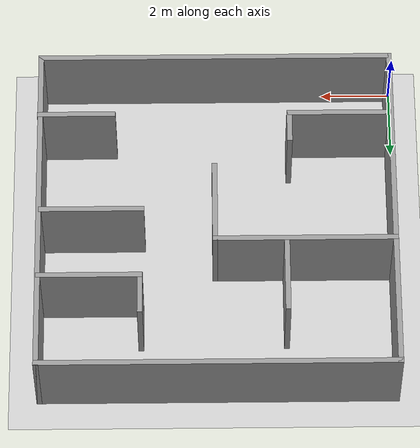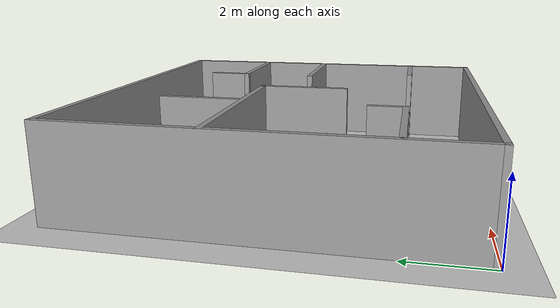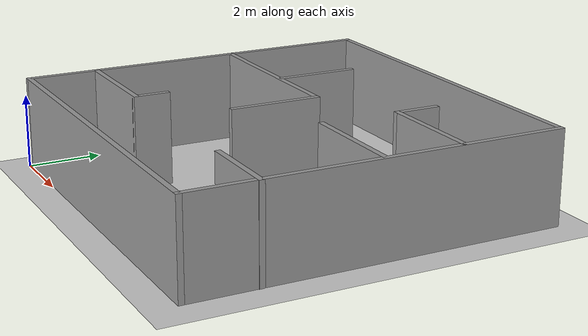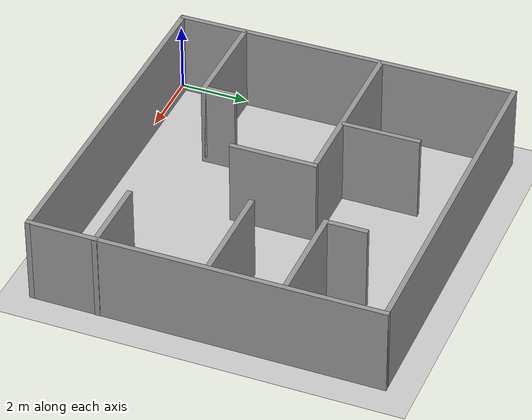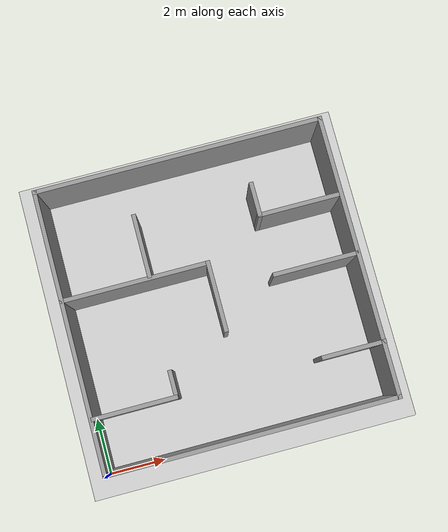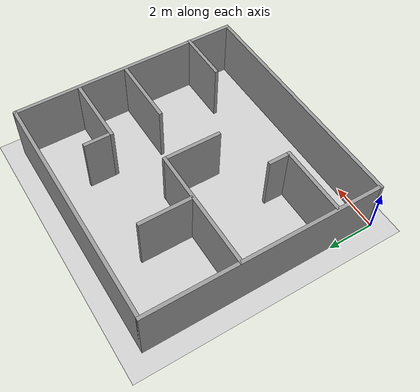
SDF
<sdf version="1.7">
 <world name="default">
  <light name="sun" type="directional">
   <pose>0 0 10 0 -0 0</pose>
   <diffuse>0.8 0.8 0.8 1</diffuse>
   <specular>0.2 0.2 0.2 1</specular>
   <attenuation>
    <range>1000</range>
    <constant>0.9</constant>
    <linear>0.01</linear>
    <quadratic>0.001</quadratic>
   </attenuation>
   <direction>-0.5 0.1 -0.9</direction>
   <spot><inner_angle>0</inner_angle><outer_angle>0</outer_angle><falloff>0</falloff></spot>
  </light>
  <model name="ground_plane">
   <static>1</static>
   <link name="link">
    <collision name="collision">
     <geometry><plane><normal>0 0 1</normal><size>100 100</size></plane></geometry>
     <surface>
      <contact><collide_bitmask>65535</collide_bitmask></contact>
      <friction><ode><mu>100</mu><mu2>50</mu2></ode></friction>
     </surface>
    </collision>
    <visual name="visual">
     <cast_shadows>0</cast_shadows>
     <geometry><plane><normal>0 0 1</normal><size>100 100</size></plane></geometry>
     <material>
      <script><uri>file://media/materials/scripts/gazebo.material</uri><name>Gazebo/Grey</name></script>
     </material>
    </visual>
   </link>
  </model>
  <gravity>0 0 -9.8</gravity>
  <magnetic_field>6e-06 2.3e-05 -4.2e-05</magnetic_field>
  <atmosphere type="adiabatic"/>
  <physics type="ode">
   <max_step_size>0.001</max_step_size>
   <real_time_factor>1</real_time_factor>
   <real_time_update_rate>1000</real_time_update_rate>
  </physics>
  <scene><ambient>0.4 0.4 0.4 1</ambient><background>0.7 0.7 0.7 1</background><shadows>1</shadows></scene>
  <spherical_coordinates>
   <surface_model>EARTH_WGS84</surface_model>
   <latitude_deg>0</latitude_deg>
   <longitude_deg>0</longitude_deg>
   <elevation>0</elevation>
   <heading_deg>0</heading_deg>
  </spherical_coordinates>
  <model name="maze_run">
   <pose>5.16014 5.02556 0 0 -0 0</pose>
   <link name="Wall_11">
    <collision name="Wall_11_Collision">
     <geometry><box><size>3 0.15 2.5</size></box></geometry>
     <pose>0 0 1.25 0 -0 0</pose>
    </collision>
    <visual name="Wall_11_Visual">
     <pose>0 0 1.25 0 -0 0</pose>
     <geometry><box><size>3 0.15 2.5</size></box></geometry>
     <material>
      <script><uri>file://media/materials/scripts/gazebo.material</uri><name>Gazebo/Grey</name></script>
      <ambient>1 1 1 1</ambient>
     </material>
     <meta><layer>0</layer></meta>
    </visual>
    <pose>-3.55104 -3.02359 0 0 -0 0</pose>
   </link>
   <link name="Wall_12">
    <collision name="Wall_12_Collision">
     <geometry><box><size>1 0.15 2.5</size></box></geometry>
     <pose>0 0 1.25 0 -0 0</pose>
    </collision>
    <visual name="Wall_12_Visual">
     <pose>0 0 1.25 0 -0 0</pose>
     <geometry><box><size>1 0.15 2.5</size></box></geometry>
     <material>
      <script><uri>file://media/materials/scripts/gazebo.material</uri><name>Gazebo/Grey</name></script>
      <ambient>1 1 1 1</ambient>
     </material>
     <meta><layer>0</layer></meta>
    </visual>
    <pose>-2.12604 -2.59859 0 0 -0 1.5708</pose>
   </link>
   <link name="Wall_14">
    <collision name="Wall_14_Collision">
     <geometry><box><size>5.25 0.15 2.5</size></box></geometry>
     <pose>0 0 1.25 0 -0 0</pose>
    </collision>
    <visual name="Wall_14_Visual">
     <pose>0 0 1.25 0 -0 0</pose>
     <geometry><box><size>5.25 0.15 2.5</size></box></geometry>
     <material>
      <script><uri>file://media/materials/scripts/gazebo.material</uri><name>Gazebo/Grey</name></script>
      <ambient>1 1 1 1</ambient>
     </material>
     <meta><layer>0</layer></meta>
    </visual>
    <pose>-2.50695 1.06242 0 0 -0 0</pose>
   </link>
   <link name="Wall_15">
    <collision name="Wall_15_Collision">
     <geometry><box><size>2.5 0.15 2.5</size></box></geometry>
     <pose>0 0 1.25 0 -0 0</pose>
    </collision>
    <visual name="Wall_15_Visual">
     <pose>0 0 1.25 0 -0 0</pose>
     <geometry><box><size>2.5 0.15 2.5</size></box></geometry>
     <material>
      <script><uri>file://media/materials/scripts/gazebo.material</uri><name>Gazebo/Grey</name></script>
      <ambient>1 1 1 1</ambient>
     </material>
     <meta><layer>0</layer></meta>
    </visual>
    <pose>0.043053 -0.112575 0 0 -0 -1.5708</pose>
   </link>
   <link name="Wall_17">
    <collision name="Wall_17_Collision">
     <geometry><box><size>2.25 0.15 2.5</size></box></geometry>
     <pose>0 0 1.25 0 -0 0</pose>
    </collision>
    <visual name="Wall_17_Visual">
     <pose>0 0 1.25 0 -0 0</pose>
     <geometry><box><size>2.25 0.15 2.5</size></box></geometry>
     <material>
      <script><uri>file://media/materials/scripts/gazebo.material</uri><name>Gazebo/Grey</name></script>
      <ambient>1 1 1 1</ambient>
     </material>
     <meta><layer>0</layer></meta>
    </visual>
    <pose>-1.98232 2.19334 0 0 -0 1.5708</pose>
   </link>
   <link name="Wall_19">
    <collision name="Wall_19_Collision">
     <geometry><box><size>3 0.15 2.5</size></box></geometry>
     <pose>0 0 1.25 0 -0 0</pose>
    </collision>
    <visual name="Wall_19_Visual">
     <pose>0 0 1.25 0 -0 0</pose>
     <geometry><box><size>3 0.15 2.5</size></box></geometry>
     <material>
      <script><uri>file://media/materials/scripts/gazebo.material</uri><name>Gazebo/Grey</name></script>
      <ambient>1 1 1 1</ambient>
     </material>
     <meta><layer>0</layer></meta>
    </visual>
    <pose>3.59149 2.19518 0 0 -0 3.14159</pose>
   </link>
   <link name="Wall_20">
    <collision name="Wall_20_Collision">
     <geometry><box><size>1.25 0.15 2.5</size></box></geometry>
     <pose>0 0 1.25 0 -0 0</pose>
    </collision>
    <visual name="Wall_20_Visual">
     <pose>0 0 1.25 0 -0 0</pose>
     <geometry><box><size>1.25 0.15 2.5</size></box></geometry>
     <material>
      <script><uri>file://media/materials/scripts/gazebo.material</uri><name>Gazebo/Grey</name></script>
      <ambient>1 1 1 1</ambient>
     </material>
     <meta><layer>0</layer></meta>
    </visual>
    <pose>2.16649 2.74518 0 0 -0 1.5708</pose>
   </link>
   <link name="Wall_22">
    <collision name="Wall_22_Collision">
     <geometry><box><size>3 0.15 2.5</size></box></geometry>
     <pose>0 0 1.25 0 -0 0</pose>
    </collision>
    <visual name="Wall_22_Visual">
     <pose>0 0 1.25 0 -0 0</pose>
     <geometry><box><size>3 0.15 2.5</size></box></geometry>
     <material>
      <script><uri>file://media/materials/scripts/gazebo.material</uri><name>Gazebo/Grey</name></script>
      <ambient>1 1 1 1</ambient>
     </material>
     <meta><layer>0</layer></meta>
    </visual>
    <pose>3.55104 0.091491 0 0 -0 3.14159</pose>
   </link>
   <link name="Wall_24">
    <collision name="Wall_24_Collision">
     <geometry><box><size>2.25 0.15 2.5</size></box></geometry>
     <pose>0 0 1.25 0 -0 0</pose>
    </collision>
    <visual name="Wall_24_Visual">
     <pose>0 0 1.25 0 -0 0</pose>
     <geometry><box><size>2.25 0.15 2.5</size></box></geometry>
     <material>
      <script><uri>file://media/materials/scripts/gazebo.material</uri><name>Gazebo/Grey</name></script>
      <ambient>1 1 1 1</ambient>
     </material>
     <meta><layer>0</layer></meta>
    </visual>
    <pose>4.00695 -3.02359 0 0 -0 3.14159</pose>
   </link>
   <link name="Wall_6">
    <collision name="Wall_6_Collision">
     <geometry><box><size>10 0.15 2.5</size></box></geometry>
     <pose>0 0 1.25 0 -0 0</pose>
    </collision>
    <visual name="Wall_6_Visual">
     <pose>0 0 1.25 0 -0 0</pose>
     <geometry><box><size>10 0.15 2.5</size></box></geometry>
     <material>
      <script><uri>file://media/materials/scripts/gazebo.material</uri><name>Gazebo/Grey</name></script>
      <ambient>1 1 1 1</ambient>
     </material>
     <meta><layer>0</layer></meta>
    </visual>
    <pose>-5.05695 -0 0 0 -0 1.5708</pose>
   </link>
   <link name="Wall_7">
    <collision name="Wall_7_Collision">
     <geometry><box><size>10.25 0.15 2.5</size></box></geometry>
     <pose>0 0 1.25 0 -0 0</pose>
    </collision>
    <visual name="Wall_7_Visual">
     <pose>0 0 1.25 0 -0 0</pose>
     <geometry><box><size>10.25 0.15 2.5</size></box></geometry>
     <material>
      <script><uri>file://media/materials/scripts/gazebo.material</uri><name>Gazebo/Grey</name></script>
      <ambient>1 1 1 1</ambient>
     </material>
     <meta><layer>0</layer></meta>
    </visual>
    <pose>-0.006947 4.925 0 0 -0 0</pose>
   </link>
   <link name="Wall_8">
    <collision name="Wall_8_Collision">
     <geometry><box><size>10 0.15 2.5</size></box></geometry>
     <pose>0 0 1.25 0 -0 0</pose>
    </collision>
    <visual name="Wall_8_Visual">
     <pose>0 0 1.25 0 -0 0</pose>
     <geometry><box><size>10 0.15 2.5</size></box></geometry>
     <material>
      <script><uri>file://media/materials/scripts/gazebo.material</uri><name>Gazebo/Grey</name></script>
      <ambient>1 1 1 1</ambient>
     </material>
     <meta><layer>0</layer></meta>
    </visual>
    <pose>5.04305 -0 0 0 -0 -1.5708</pose>
   </link>
   <link name="Wall_9">
    <collision name="Wall_9_Collision">
     <geometry><box><size>10.25 0.15 2.5</size></box></geometry>
     <pose>0 0 1.25 0 -0 0</pose>
    </collision>
    <visual name="Wall_9_Visual">
     <pose>0 0 1.25 0 -0 0</pose>
     <geometry><box><size>10.25 0.15 2.5</size></box></geometry>
     <material>
      <script><uri>file://media/materials/scripts/gazebo.material</uri><name>Gazebo/Grey</name></script>
      <ambient>1 1 1 1</ambient>
     </material>
     <meta><layer>0</layer></meta>
    </visual>
    <pose>-0.006947 -4.925 0 0 -0 3.14159</pose>
   </link>
   <static>1</static>
  </model>
 </world>
</sdf>
